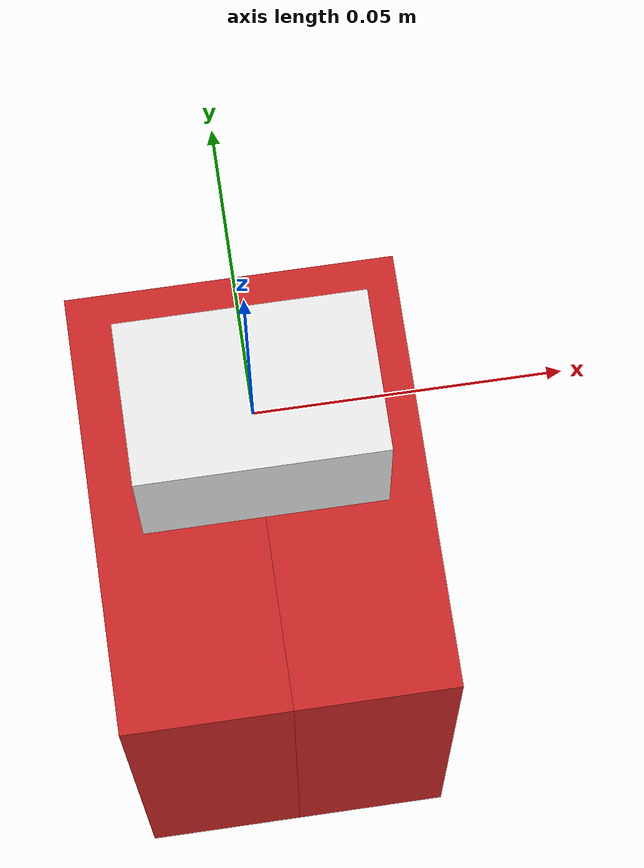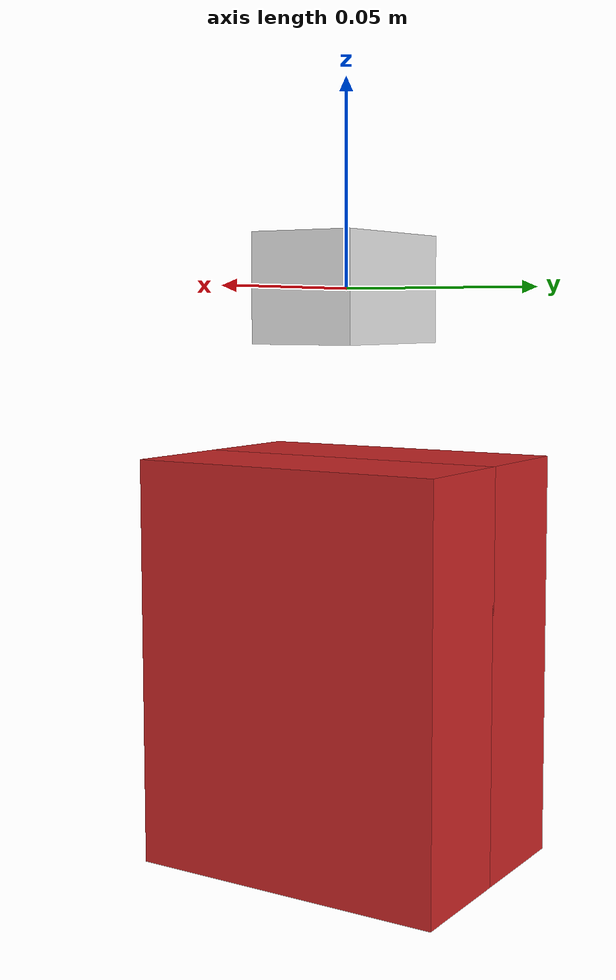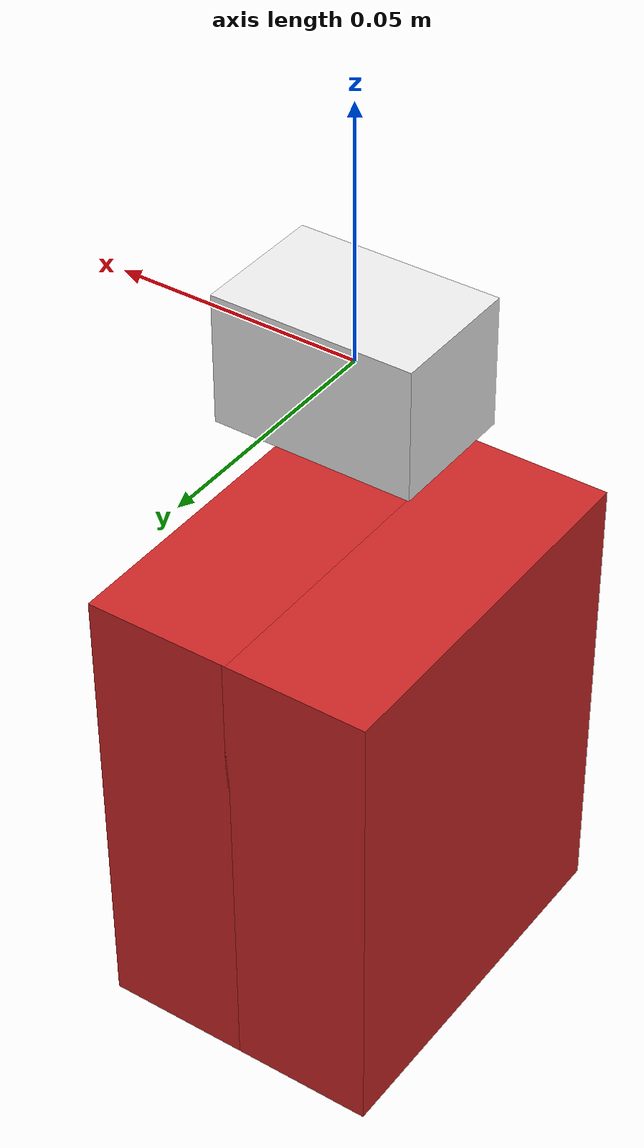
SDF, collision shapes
<?xml version="1.0"?>
<sdf version="1.6">
  <model name='gripper'>
    <!-- Base link -->
    <link name='gripper_base_link'>
      <pose>0 0 0 0 1.5707963 0</pose>
      <inertial>
        <pose>0 0 0 0 0 0</pose>
        <mass>0.00000001</mass>
        <inertia>
          <ixx>0.000001</ixx>
          <ixy>0.0</ixy>
          <iyy>0.000001</iyy>
          <ixz>0.0</ixz>
          <iyz>0.0</iyz>
          <izz>0.000001</izz>
        </inertia>
      </inertial>
      <self_collide> false</self_collide>
      <collision name='gripper_base_link_inertia_collision'>
        <pose>0 0 0 0 0 0</pose>
        <geometry>
          <box>
            <size>0.02617 0.02689 0.04064</size>
          </box>
        </geometry>
        <surface>
          <contact>
            <ode>
              <min_depth>0.001</min_depth>
              <max_vel>0</max_vel>
            </ode>
          </contact>
          <friction>
            <ode/>
          </friction>
        </surface>
      </collision>
      <visual name='gripper_base_link_inertia_visual'>
        <pose>0 0 0 0 0 0</pose>
        <geometry>
          <mesh>
            <scale>0.001 0.001 0.001</scale>
            <uri>model://raptor_gripper/meshes/gripper_base.stl</uri>
          </mesh>
        </geometry>
        <material>
          <script>
            <name>Gazebo/White</name>
            <uri>file://media/materials/scripts/gazebo.material</uri>
          </script>
        </material>
      </visual>
      <gravity>1</gravity>
      <velocity_decay/>
    </link>

    <!-- Left link -->
    <link name='gripper_left_link'>
      <pose relative_to='gripper_base_link'> 0.05666 0.0 -0.03465 0.0 0.0 0.0</pose>
      <inertial>
        <pose>0 0 0 0 0 0</pose>
        <mass>0.00000001</mass>
        <inertia>
          <ixx>0.000001</ixx>
          <ixy>0.0</ixy>
          <iyy>0.000001</iyy>
          <ixz>0.0</ixz>
          <iyz>0.0</iyz>
          <izz>0.000001</izz>
        </inertia>
      </inertial>
      <self_collide>true</self_collide>
      <collision name='gripper_left_link_inertia_collision'>
        <pose>0.03417 0 0.02 0 0 0</pose>
        <geometry>
          <box>
            <size>0.1 0.08 0.03</size>
          </box>
        </geometry>
        <surface>
          <contact>
            <ode>
              <min_depth>0.001</min_depth>
              <max_vel>100000</max_vel>
            </ode>
          </contact>
           <friction>
            <ode>
              <mu>10000000</mu>
              <mu2>10000000</mu2>
            </ode>
          </friction>
        </surface>
      </collision>
      <visual name='gripper_left_link_inertia_visual'>
        <pose>0 0 0 0 0 0</pose>
        <geometry>
          <mesh>
            <scale>0.001 0.001 0.001</scale>
            <uri>model://raptor_gripper/meshes/gripper_1.stl</uri>
          </mesh>
        </geometry>
        <material>
          <script>
            <name>Gazebo/Red</name>
            <uri>file://media/materials/scripts/gazebo.material</uri>
          </script>
        </material>
      </visual>
      <gravity>1</gravity>
      <velocity_decay/>
    </link>

    <!-- Left joint -->
    <joint name='gripper_left_joint' type='revolute'>
      <child>gripper_left_link</child>
      <parent>gripper_base_link</parent>
      <axis>
        <xyz>0 1 0</xyz>
        <limit>
          <lower>-1e+16</lower>
          <upper>1e+16</upper>
        </limit>
        <use_parent_model_frame>0</use_parent_model_frame>
      </axis>
      <pose relative_to='gripper_base_link'> 0.01248 0.0 -0.02006 0.0 0.0 0.0</pose>
    </joint>

    <!-- Right link -->
    <link name='gripper_right_link'>
      <pose relative_to='gripper_base_link'> 0.05666 0.0 0.03465 0.0 0.0 0.0</pose>
      <inertial>
        <pose>0 0 0 0 0 0</pose>
        <mass>0.00000001</mass>
        <inertia>
          <ixx>0.000001</ixx>
          <ixy>0.0</ixy>
          <iyy>0.000001</iyy>
          <ixz>0.0</ixz>
          <iyz>0.0</iyz>
          <izz>0.000001</izz>
        </inertia>
      </inertial>
      <self_collide>true</self_collide>
      <collision name='gripper_right_link_inertia_collision'>
        <pose>0.03417 0 -0.02 0 0 0</pose>
        <geometry>
          <box>
            <size>0.1 0.08 0.03</size>
          </box>
        </geometry>
        <surface>
          <contact>
            <ode>
              <min_depth>0.001</min_depth>
              <max_vel>100000</max_vel>
            </ode>
          </contact>
          <friction>
            <ode>
              <mu>10000000</mu>
              <mu2>10000000</mu2>
            </ode>
          </friction>
        </surface>
      </collision>
      <visual name='gripper_right_link_inertia_visual'>
        <pose>0 0 0 0 0 0</pose>
        <pose>0.03417 0 -0.02 0 0 0</pose>
        <geometry>
          <mesh>
            <scale>0.001 0.001 0.001</scale>
            <uri>model://raptor_gripper/meshes/gripper_2.stl</uri>
          </mesh>
        </geometry>
        <material>
          <script>
            <name>Gazebo/Red</name>
            <uri>file://media/materials/scripts/gazebo.material</uri>
          </script>
        </material>
      </visual>
      <gravity>1</gravity>
      <velocity_decay/>
    </link>

    <!-- Right joint -->
    <joint name='gripper_right_joint' type='revolute'>
      <child>gripper_right_link</child>
      <parent>gripper_base_link</parent>
      <axis>
        <xyz>0 1 0</xyz>
        <limit>
          <lower>-1e+16</lower>
          <upper>1e+16</upper>
        </limit>
        <use_parent_model_frame>0</use_parent_model_frame>
      </axis>
      <pose relative_to='gripper_base_link'> 0.01248 0.0 0.02006 0.0 0.0 0.0</pose>
    </joint>
  </model>
</sdf>
